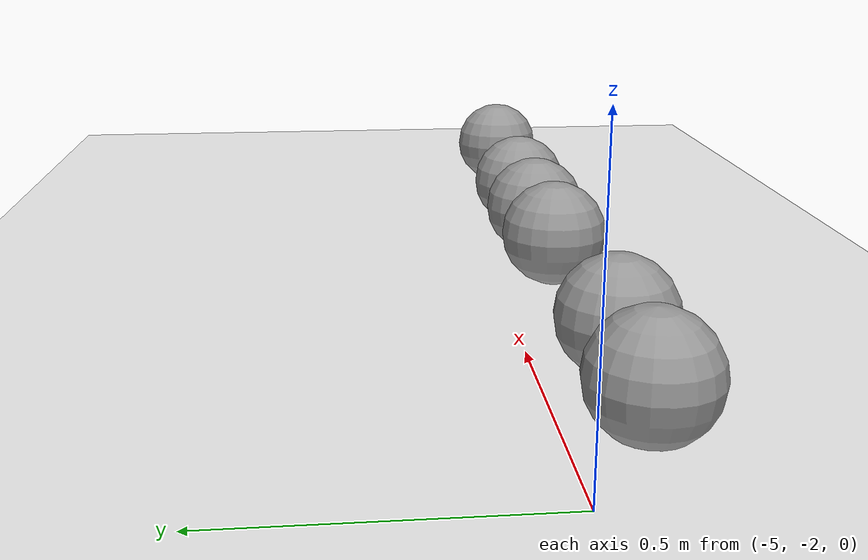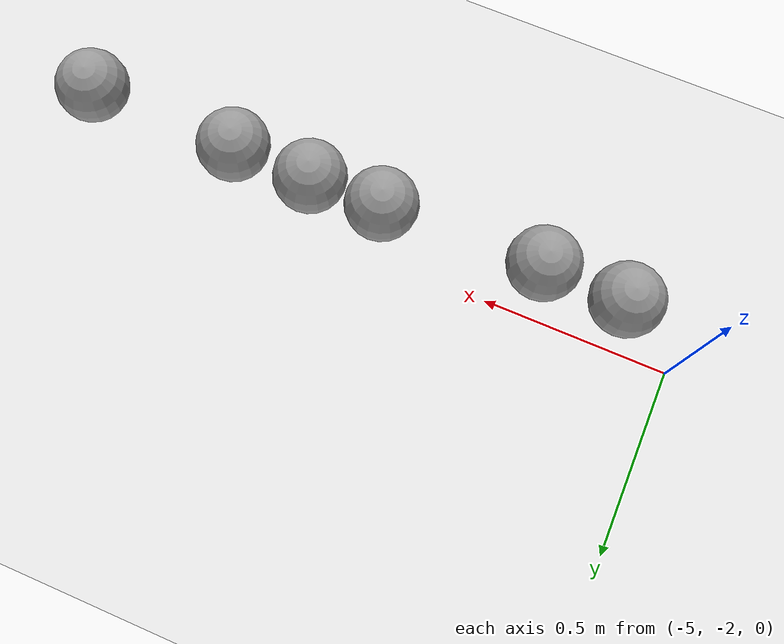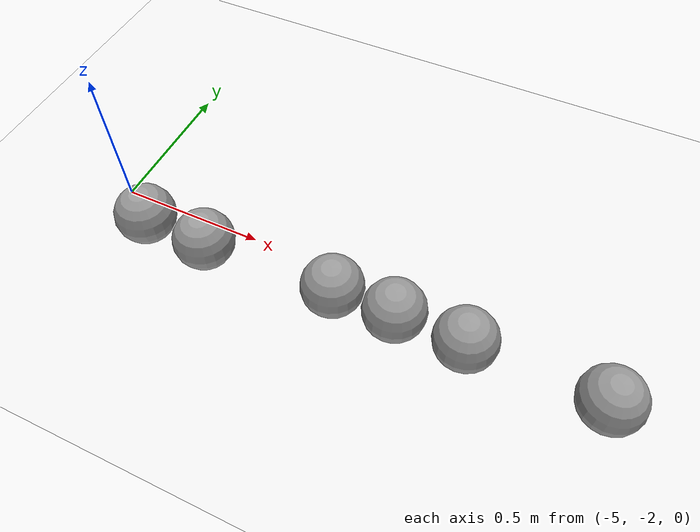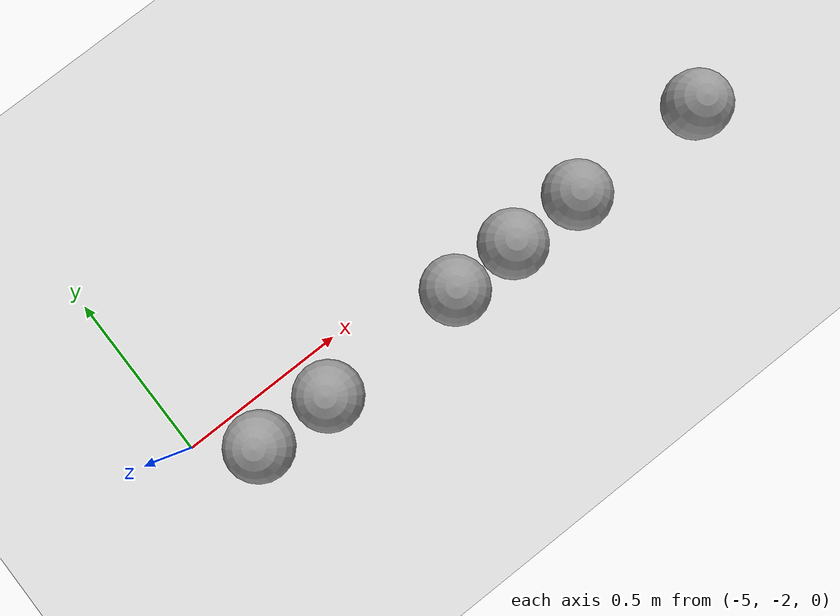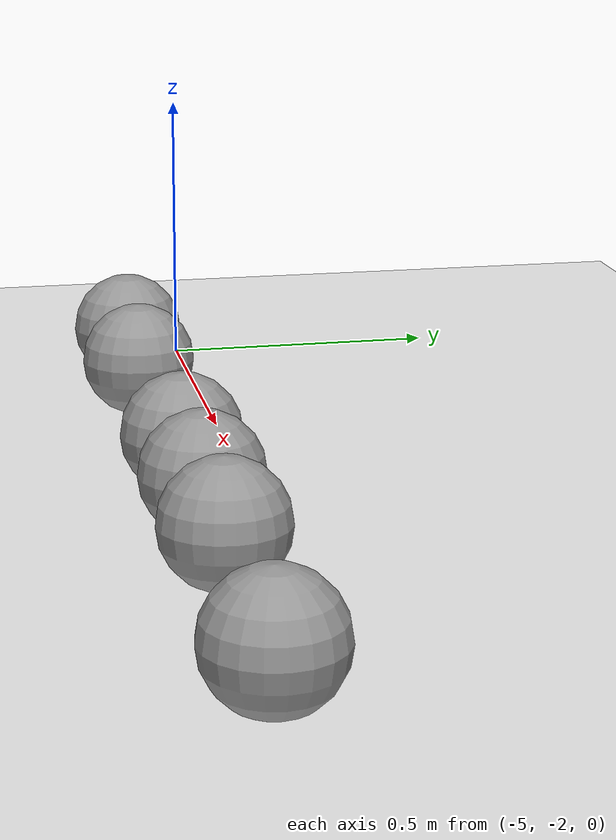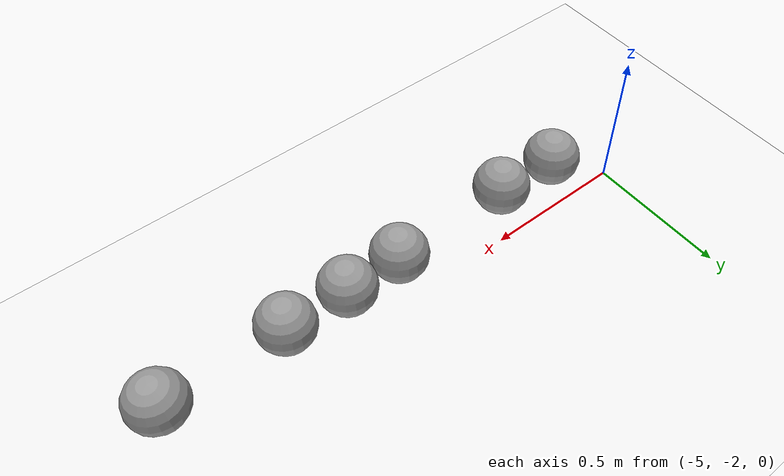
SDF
<sdf version="1.7">
 <world name="default">
  <model name="ground_plane">
   <static>1</static>
   <link name="link">
    <collision name="collision">
     <geometry><plane><normal>0 0 1</normal><size>100 100</size></plane></geometry>
     <surface>
      <contact><collide_bitmask>65535</collide_bitmask></contact>
      <friction><ode><mu>100</mu><mu2>50</mu2></ode></friction>
     </surface>
    </collision>
    <visual name="visual">
     <cast_shadows>0</cast_shadows>
     <geometry><plane><normal>0 0 1</normal><size>100 100</size></plane></geometry>
     <material>
      <script><uri>file://media/materials/scripts/gazebo.material</uri><name>Gazebo/White</name></script>
     </material>
    </visual>
   </link>
  </model>
  <model name="sphere_25">
   <link name="link_0">
    <inertial>
     <mass>1</mass>
     <inertia><ixx>0.1</ixx><ixy>0</ixy><ixz>0</ixz><iyy>0.1</iyy><iyz>0</iyz><izz>0.1</izz></inertia>
    </inertial>
    <visual name="visual">
     <geometry><sphere><radius>0.1</radius></sphere></geometry>
     <material>
      <lighting>1</lighting>
      <script><uri>file://media/materials/scripts/gazebo.material</uri><name>Gazebo/Grey</name></script>
      <shader type="pixel"><normal_map>__default__</normal_map></shader>
      <ambient>0.3 0.3 0.3 1</ambient>
      <diffuse>0.7 0.7 0.7 1</diffuse>
      <specular>0.01 0.01 0.01 1</specular>
      <emissive>0 0 0 1</emissive>
     </material>
    </visual>
    <collision name="collision">
     <geometry><sphere><radius>0.1</radius></sphere></geometry>
     <surface>
      <friction>
       <ode><mu>1</mu><mu2>1</mu2><fdir1>0 0 0</fdir1><slip1>0</slip1><slip2>0</slip2></ode>
       <torsional>
        <coefficient>1</coefficient>
        <patch_radius>0</patch_radius>
        <surface_radius>0</surface_radius>
        <use_patch_radius>1</use_patch_radius>
        <ode><slip>0</slip></ode>
       </torsional>
      </friction>
      <bounce><restitution_coefficient>0</restitution_coefficient><threshold>1e+06</threshold></bounce>
      <contact>
       <collide_without_contact>0</collide_without_contact>
       <collide_without_contact_bitmask>1</collide_without_contact_bitmask>
       <collide_bitmask>1</collide_bitmask>
       <ode>
        <soft_cfm>0</soft_cfm>
        <soft_erp>0.2</soft_erp>
        <kp>1e+13</kp>
        <kd>1</kd>
        <max_vel>0.01</max_vel>
        <min_depth>0</min_depth>
       </ode>
       <bullet>
        <split_impulse>1</split_impulse>
        <split_impulse_penetration_threshold>-0.01</split_impulse_penetration_threshold>
        <soft_cfm>0</soft_cfm>
        <soft_erp>0.2</soft_erp>
        <kp>1e+13</kp>
        <kd>1</kd>
       </bullet>
      </contact>
     </surface>
    </collision>
   </link>
   <static>0</static>
   <pose>-3.30687 -2.12164 0.1 0 -0 0</pose>
  </model>
  <model name="sphere_27">
   <link name="link_0">
    <inertial>
     <mass>1</mass>
     <inertia><ixx>0.1</ixx><ixy>0</ixy><ixz>0</ixz><iyy>0.1</iyy><iyz>0</iyz><izz>0.1</izz></inertia>
    </inertial>
    <visual name="visual">
     <geometry><sphere><radius>0.1</radius></sphere></geometry>
     <material>
      <lighting>1</lighting>
      <script><uri>file://media/materials/scripts/gazebo.material</uri><name>Gazebo/Grey</name></script>
      <shader type="pixel"><normal_map>__default__</normal_map></shader>
      <ambient>0.3 0.3 0.3 1</ambient>
      <diffuse>0.7 0.7 0.7 1</diffuse>
      <specular>0.01 0.01 0.01 1</specular>
      <emissive>0 0 0 1</emissive>
     </material>
    </visual>
    <collision name="collision">
     <geometry><sphere><radius>0.1</radius></sphere></geometry>
     <surface>
      <friction>
       <ode><mu>1</mu><mu2>1</mu2><fdir1>0 0 0</fdir1><slip1>0</slip1><slip2>0</slip2></ode>
       <torsional>
        <coefficient>1</coefficient>
        <patch_radius>0</patch_radius>
        <surface_radius>0</surface_radius>
        <use_patch_radius>1</use_patch_radius>
        <ode><slip>0</slip></ode>
       </torsional>
      </friction>
      <bounce><restitution_coefficient>0</restitution_coefficient><threshold>1e+06</threshold></bounce>
      <contact>
       <collide_without_contact>0</collide_without_contact>
       <collide_without_contact_bitmask>1</collide_without_contact_bitmask>
       <collide_bitmask>1</collide_bitmask>
       <ode>
        <soft_cfm>0</soft_cfm>
        <soft_erp>0.2</soft_erp>
        <kp>1e+13</kp>
        <kd>1</kd>
        <max_vel>0.01</max_vel>
        <min_depth>0</min_depth>
       </ode>
       <bullet>
        <split_impulse>1</split_impulse>
        <split_impulse_penetration_threshold>-0.01</split_impulse_penetration_threshold>
        <soft_cfm>0</soft_cfm>
        <soft_erp>0.2</soft_erp>
        <kp>1e+13</kp>
        <kd>1</kd>
       </bullet>
      </contact>
     </surface>
    </collision>
   </link>
   <static>0</static>
   <pose>-3.72917 -2.11295 0.1 0.002869 -0.02662 -0.000892</pose>
  </model>
  <model name="sphere_28">
   <link name="link_0">
    <inertial>
     <mass>1</mass>
     <inertia><ixx>0.1</ixx><ixy>0</ixy><ixz>0</ixz><iyy>0.1</iyy><iyz>0</iyz><izz>0.1</izz></inertia>
    </inertial>
    <visual name="visual">
     <geometry><sphere><radius>0.1</radius></sphere></geometry>
     <material>
      <lighting>1</lighting>
      <script><uri>file://media/materials/scripts/gazebo.material</uri><name>Gazebo/Grey</name></script>
      <shader type="pixel"><normal_map>__default__</normal_map></shader>
      <ambient>0.3 0.3 0.3 1</ambient>
      <diffuse>0.7 0.7 0.7 1</diffuse>
      <specular>0.01 0.01 0.01 1</specular>
      <emissive>0 0 0 1</emissive>
     </material>
    </visual>
    <collision name="collision">
     <geometry><sphere><radius>0.1</radius></sphere></geometry>
     <surface>
      <friction>
       <ode><mu>1</mu><mu2>1</mu2><fdir1>0 0 0</fdir1><slip1>0</slip1><slip2>0</slip2></ode>
       <torsional>
        <coefficient>1</coefficient>
        <patch_radius>0</patch_radius>
        <surface_radius>0</surface_radius>
        <use_patch_radius>1</use_patch_radius>
        <ode><slip>0</slip></ode>
       </torsional>
      </friction>
      <bounce><restitution_coefficient>0</restitution_coefficient><threshold>1e+06</threshold></bounce>
      <contact>
       <collide_without_contact>0</collide_without_contact>
       <collide_without_contact_bitmask>1</collide_without_contact_bitmask>
       <collide_bitmask>1</collide_bitmask>
       <ode>
        <soft_cfm>0</soft_cfm>
        <soft_erp>0.2</soft_erp>
        <kp>1e+13</kp>
        <kd>1</kd>
        <max_vel>0.01</max_vel>
        <min_depth>0</min_depth>
       </ode>
       <bullet>
        <split_impulse>1</split_impulse>
        <split_impulse_penetration_threshold>-0.01</split_impulse_penetration_threshold>
        <soft_cfm>0</soft_cfm>
        <soft_erp>0.2</soft_erp>
        <kp>1e+13</kp>
        <kd>1</kd>
       </bullet>
      </contact>
     </surface>
    </collision>
   </link>
   <static>0</static>
   <pose>-3.95319 -2.10993 0.1 0 -0 0</pose>
  </model>
  <model name="sphere_29">
   <link name="link_0">
    <inertial>
     <mass>1</mass>
     <inertia><ixx>0.1</ixx><ixy>0</ixy><ixz>0</ixz><iyy>0.1</iyy><iyz>0</iyz><izz>0.1</izz></inertia>
    </inertial>
    <visual name="visual">
     <geometry><sphere><radius>0.1</radius></sphere></geometry>
     <material>
      <lighting>1</lighting>
      <script><uri>file://media/materials/scripts/gazebo.material</uri><name>Gazebo/Grey</name></script>
      <shader type="pixel"><normal_map>__default__</normal_map></shader>
      <ambient>0.3 0.3 0.3 1</ambient>
      <diffuse>0.7 0.7 0.7 1</diffuse>
      <specular>0.01 0.01 0.01 1</specular>
      <emissive>0 0 0 1</emissive>
     </material>
    </visual>
    <collision name="collision">
     <geometry><sphere><radius>0.1</radius></sphere></geometry>
     <surface>
      <friction>
       <ode><mu>1</mu><mu2>1</mu2><fdir1>0 0 0</fdir1><slip1>0</slip1><slip2>0</slip2></ode>
       <torsional>
        <coefficient>1</coefficient>
        <patch_radius>0</patch_radius>
        <surface_radius>0</surface_radius>
        <use_patch_radius>1</use_patch_radius>
        <ode><slip>0</slip></ode>
       </torsional>
      </friction>
      <bounce><restitution_coefficient>0</restitution_coefficient><threshold>1e+06</threshold></bounce>
      <contact>
       <collide_without_contact>0</collide_without_contact>
       <collide_without_contact_bitmask>1</collide_without_contact_bitmask>
       <collide_bitmask>1</collide_bitmask>
       <ode>
        <soft_cfm>0</soft_cfm>
        <soft_erp>0.2</soft_erp>
        <kp>1e+13</kp>
        <kd>1</kd>
        <max_vel>0.01</max_vel>
        <min_depth>0</min_depth>
       </ode>
       <bullet>
        <split_impulse>1</split_impulse>
        <split_impulse_penetration_threshold>-0.01</split_impulse_penetration_threshold>
        <soft_cfm>0</soft_cfm>
        <soft_erp>0.2</soft_erp>
        <kp>1e+13</kp>
        <kd>1</kd>
       </bullet>
      </contact>
     </surface>
    </collision>
   </link>
   <static>0</static>
   <pose>-4.15674 -2.11162 0.1 0 -0 0</pose>
  </model>
  <model name="sphere_31">
   <link name="link_0">
    <inertial>
     <mass>1</mass>
     <inertia><ixx>0.1</ixx><ixy>0</ixy><ixz>0</ixz><iyy>0.1</iyy><iyz>0</iyz><izz>0.1</izz></inertia>
    </inertial>
    <visual name="visual">
     <geometry><sphere><radius>0.1</radius></sphere></geometry>
     <material>
      <lighting>1</lighting>
      <script><uri>file://media/materials/scripts/gazebo.material</uri><name>Gazebo/Grey</name></script>
      <shader type="pixel"><normal_map>__default__</normal_map></shader>
      <ambient>0.3 0.3 0.3 1</ambient>
      <diffuse>0.7 0.7 0.7 1</diffuse>
      <specular>0.01 0.01 0.01 1</specular>
      <emissive>0 0 0 1</emissive>
     </material>
    </visual>
    <collision name="collision">
     <geometry><sphere><radius>0.1</radius></sphere></geometry>
     <surface>
      <friction>
       <ode><mu>1</mu><mu2>1</mu2><fdir1>0 0 0</fdir1><slip1>0</slip1><slip2>0</slip2></ode>
       <torsional>
        <coefficient>1</coefficient>
        <patch_radius>0</patch_radius>
        <surface_radius>0</surface_radius>
        <use_patch_radius>1</use_patch_radius>
        <ode><slip>0</slip></ode>
       </torsional>
      </friction>
      <bounce><restitution_coefficient>0</restitution_coefficient><threshold>1e+06</threshold></bounce>
      <contact>
       <collide_without_contact>0</collide_without_contact>
       <collide_without_contact_bitmask>1</collide_without_contact_bitmask>
       <collide_bitmask>1</collide_bitmask>
       <ode>
        <soft_cfm>0</soft_cfm>
        <soft_erp>0.2</soft_erp>
        <kp>1e+13</kp>
        <kd>1</kd>
        <max_vel>0.01</max_vel>
        <min_depth>0</min_depth>
       </ode>
       <bullet>
        <split_impulse>1</split_impulse>
        <split_impulse_penetration_threshold>-0.01</split_impulse_penetration_threshold>
        <soft_cfm>0</soft_cfm>
        <soft_erp>0.2</soft_erp>
        <kp>1e+13</kp>
        <kd>1</kd>
       </bullet>
      </contact>
     </surface>
    </collision>
   </link>
   <static>0</static>
   <pose>-4.60455 -2.12423 0.1 0 -0 0</pose>
  </model>
  <model name="sphere_32">
   <link name="link_0">
    <inertial>
     <mass>1</mass>
     <inertia><ixx>0.1</ixx><ixy>0</ixy><ixz>0</ixz><iyy>0.1</iyy><iyz>0</iyz><izz>0.1</izz></inertia>
    </inertial>
    <visual name="visual">
     <geometry><sphere><radius>0.1</radius></sphere></geometry>
     <material>
      <lighting>1</lighting>
      <script><uri>file://media/materials/scripts/gazebo.material</uri><name>Gazebo/Grey</name></script>
      <shader type="pixel"><normal_map>__default__</normal_map></shader>
      <ambient>0.3 0.3 0.3 1</ambient>
      <diffuse>0.7 0.7 0.7 1</diffuse>
      <specular>0.01 0.01 0.01 1</specular>
      <emissive>0 0 0 1</emissive>
     </material>
    </visual>
    <collision name="collision">
     <geometry><sphere><radius>0.1</radius></sphere></geometry>
     <surface>
      <friction>
       <ode><mu>1</mu><mu2>1</mu2><fdir1>0 0 0</fdir1><slip1>0</slip1><slip2>0</slip2></ode>
       <torsional>
        <coefficient>1</coefficient>
        <patch_radius>0</patch_radius>
        <surface_radius>0</surface_radius>
        <use_patch_radius>1</use_patch_radius>
        <ode><slip>0</slip></ode>
       </torsional>
      </friction>
      <bounce><restitution_coefficient>0</restitution_coefficient><threshold>1e+06</threshold></bounce>
      <contact>
       <collide_without_contact>0</collide_without_contact>
       <collide_without_contact_bitmask>1</collide_without_contact_bitmask>
       <collide_bitmask>1</collide_bitmask>
       <ode>
        <soft_cfm>0</soft_cfm>
        <soft_erp>0.2</soft_erp>
        <kp>1e+13</kp>
        <kd>1</kd>
        <max_vel>0.01</max_vel>
        <min_depth>0</min_depth>
       </ode>
       <bullet>
        <split_impulse>1</split_impulse>
        <split_impulse_penetration_threshold>-0.01</split_impulse_penetration_threshold>
        <soft_cfm>0</soft_cfm>
        <soft_erp>0.2</soft_erp>
        <kp>1e+13</kp>
        <kd>1</kd>
       </bullet>
      </contact>
     </surface>
    </collision>
   </link>
   <static>0</static>
   <pose>-4.83291 -2.1162 0.1 0 -0 0</pose>
  </model>
 </world>
</sdf>
